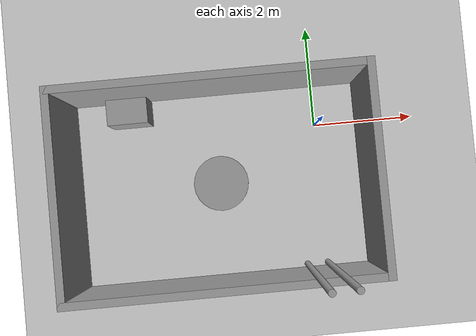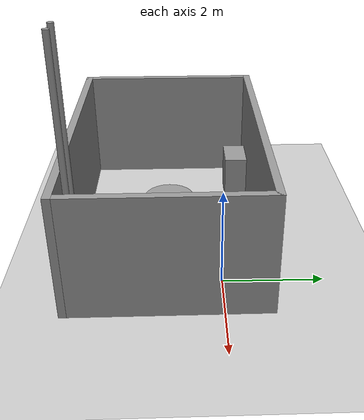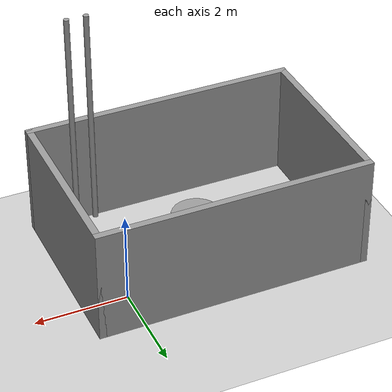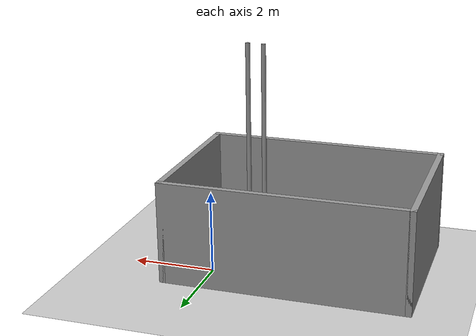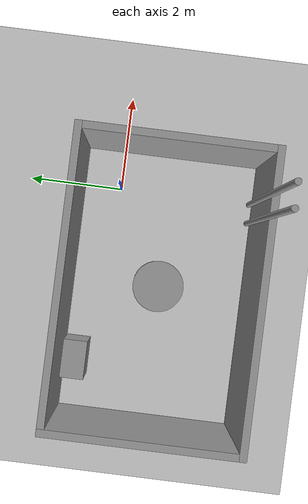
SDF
<sdf version="1.7">
 <world name="default">
  <light name="sun" type="directional">
   <pose>0 0 10 0 -0 0</pose>
   <diffuse>0.8 0.8 0.8 1</diffuse>
   <specular>0.2 0.2 0.2 1</specular>
   <attenuation>
    <range>1000</range>
    <constant>0.9</constant>
    <linear>0.01</linear>
    <quadratic>0.001</quadratic>
   </attenuation>
   <direction>-0.5 0.1 -0.9</direction>
   <spot><inner_angle>0</inner_angle><outer_angle>0</outer_angle><falloff>0</falloff></spot>
  </light>
  <model name="ground_plane">
   <static>1</static>
   <link name="link">
    <collision name="collision">
     <geometry><plane><normal>0 0 1</normal><size>100 100</size></plane></geometry>
     <surface>
      <contact><collide_bitmask>65535</collide_bitmask></contact>
      <friction><ode><mu>100</mu><mu2>50</mu2></ode></friction>
     </surface>
    </collision>
    <visual name="visual">
     <cast_shadows>0</cast_shadows>
     <geometry><plane><normal>0 0 1</normal><size>100 100</size></plane></geometry>
     <material>
      <script><uri>file://media/materials/scripts/gazebo.material</uri><name>Gazebo/Grey</name></script>
     </material>
    </visual>
   </link>
  </model>
  <gravity>0 0 -9.8</gravity>
  <magnetic_field>6e-06 2.3e-05 -4.2e-05</magnetic_field>
  <atmosphere type="adiabatic"/>
  <physics type="ode">
   <max_step_size>0.001</max_step_size>
   <real_time_factor>1</real_time_factor>
   <real_time_update_rate>1000</real_time_update_rate>
  </physics>
  <scene><ambient>0.4 0.4 0.4 1</ambient><background>0.7 0.7 0.7 1</background><shadows>1</shadows></scene>
  <spherical_coordinates>
   <surface_model>EARTH_WGS84</surface_model>
   <latitude_deg>0</latitude_deg>
   <longitude_deg>0</longitude_deg>
   <elevation>0</elevation>
   <heading_deg>0</heading_deg>
  </spherical_coordinates>
  <model name="pool">
   <pose>0.06918 -1.04342 0 0 -0 0</pose>
   <link name="Wall_10">
    <collision name="Wall_10_Collision">
     <geometry><box><size>6 0.15 2.5</size></box></geometry>
     <pose>0 0 1.25 0 -0 0</pose>
    </collision>
    <visual name="Wall_10_Visual">
     <pose>0 0 1.25 0 -0 0</pose>
     <geometry><box><size>6 0.15 2.5</size></box></geometry>
     <material>
      <script><uri>file://media/materials/scripts/gazebo.material</uri><name>Gazebo/Grey</name></script>
      <ambient>1 1 1 1</ambient>
     </material>
     <meta><layer>0</layer></meta>
    </visual>
    <pose>-2.08753 -1.925 0 0 -0 3.14159</pose>
   </link>
   <link name="Wall_11">
    <collision name="Wall_11_Collision">
     <geometry><box><size>4 0.15 2.5</size></box></geometry>
     <pose>0 0 1.25 0 -0 0</pose>
    </collision>
    <visual name="Wall_11_Visual">
     <pose>0 0 1.25 0 -0 0</pose>
     <geometry><box><size>4 0.15 2.5</size></box></geometry>
     <material>
      <script><uri>file://media/materials/scripts/gazebo.material</uri><name>Gazebo/Grey</name></script>
      <ambient>1 1 1 1</ambient>
     </material>
     <meta><layer>0</layer></meta>
    </visual>
    <pose>-5.01253 -0 0 0 -0 1.5708</pose>
   </link>
   <link name="Wall_8">
    <collision name="Wall_8_Collision">
     <geometry><box><size>6 0.15 2.5</size></box></geometry>
     <pose>0 0 1.25 0 -0 0</pose>
    </collision>
    <visual name="Wall_8_Visual">
     <pose>0 0 1.25 0 -0 0</pose>
     <geometry><box><size>6 0.15 2.5</size></box></geometry>
     <material>
      <script><uri>file://media/materials/scripts/gazebo.material</uri><name>Gazebo/Grey</name></script>
      <ambient>1 1 1 1</ambient>
     </material>
     <meta><layer>0</layer></meta>
    </visual>
    <pose>-2.08753 1.925 0 0 -0 0</pose>
   </link>
   <link name="Wall_9">
    <collision name="Wall_9_Collision">
     <geometry><box><size>4 0.15 2.5</size></box></geometry>
     <pose>0 0 1.25 0 -0 0</pose>
    </collision>
    <visual name="Wall_9_Visual">
     <pose>0 0 1.25 0 -0 0</pose>
     <geometry><box><size>4 0.15 2.5</size></box></geometry>
     <material>
      <script><uri>file://media/materials/scripts/gazebo.material</uri><name>Gazebo/Grey</name></script>
      <ambient>1 1 1 1</ambient>
     </material>
     <meta><layer>0</layer></meta>
    </visual>
    <pose>0.837469 -0 0 0 -0 -1.5708</pose>
   </link>
   <static>1</static>
  </model>
  <model name="unit_cylinder">
   <pose>-2.00181 -1.03504 0.401222 6e-06 6e-06 -0</pose>
   <link name="link">
    <inertial>
     <mass>1</mass>
     <inertia><ixx>0.145833</ixx><ixy>0</ixy><ixz>0</ixz><iyy>0.145833</iyy><iyz>0</iyz><izz>0.125</izz></inertia>
    </inertial>
    <collision name="collision">
     <geometry><cylinder><radius>0.537735</radius><length>0.802458</length></cylinder></geometry>
    </collision>
    <visual name="visual">
     <geometry><cylinder><radius>0.537735</radius><length>0.802458</length></cylinder></geometry>
     <material>
      <script><name>Gazebo/Grey</name><uri>file://media/materials/scripts/gazebo.material</uri></script>
     </material>
    </visual>
   </link>
  </model>
  <model name="unit_box">
   <link name="link">
    <inertial>
     <mass>1</mass>
     <inertia>
      <ixx>0.166667</ixx>
      <ixy>0</ixy>
      <ixz>0</ixz>
      <iyy>0.166667</iyy>
      <iyz>0</iyz>
      <izz>0.166667</izz>
     </inertia>
    </inertial>
    <pose>-0.240148 0.069354 1e-06 0 -0 0</pose>
    <visual name="visual">
     <geometry><box><size>0.8 0.5 1</size></box></geometry>
     <material>
      <script><name>Gazebo/Grey</name><uri>file://media/materials/scripts/gazebo.material</uri></script>
      <shader type="pixel"><normal_map>__default__</normal_map></shader>
      <ambient>0.3 0.3 0.3 1</ambient>
      <diffuse>0.7 0.7 0.7 1</diffuse>
      <specular>0.01 0.01 0.01 1</specular>
      <emissive>0 0 0 1</emissive>
     </material>
    </visual>
    <collision name="collision">
     <geometry><box><size>0.8 0.5 1</size></box></geometry>
     <surface>
      <friction>
       <ode><mu>1</mu><mu2>1</mu2><fdir1>0 0 0</fdir1><slip1>0</slip1><slip2>0</slip2></ode>
       <torsional>
        <coefficient>1</coefficient>
        <patch_radius>0</patch_radius>
        <surface_radius>0</surface_radius>
        <use_patch_radius>1</use_patch_radius>
        <ode><slip>0</slip></ode>
       </torsional>
      </friction>
      <bounce><restitution_coefficient>0</restitution_coefficient><threshold>1e+06</threshold></bounce>
      <contact>
       <collide_without_contact>0</collide_without_contact>
       <collide_without_contact_bitmask>1</collide_without_contact_bitmask>
       <collide_bitmask>1</collide_bitmask>
       <ode>
        <soft_cfm>0</soft_cfm>
        <soft_erp>0.2</soft_erp>
        <kp>1e+13</kp>
        <kd>1</kd>
        <max_vel>0.01</max_vel>
        <min_depth>0</min_depth>
       </ode>
       <bullet>
        <split_impulse>1</split_impulse>
        <split_impulse_penetration_threshold>-0.01</split_impulse_penetration_threshold>
        <soft_cfm>0</soft_cfm>
        <soft_erp>0.2</soft_erp>
        <kp>1e+13</kp>
        <kd>1</kd>
       </bullet>
      </contact>
     </surface>
    </collision>
   </link>
   <static>0</static>
   <pose>-3.47729 0.464029 0.499992 3e-06 9e-06 0.000358</pose>
  </model>
  <model name="Untitled_clone">
   <link name="link_0">
    <inertial>
     <mass>1</mass>
     <inertia><ixx>0.145833</ixx><ixy>0</ixy><ixz>0</ixz><iyy>0.145833</iyy><iyz>0</iyz><izz>0.125</izz></inertia>
    </inertial>
    <pose>-0 0 -0.850864 0 -0 0</pose>
    <visual name="visual">
     <geometry><cylinder><radius>0.06</radius><length>5</length></cylinder></geometry>
     <material>
      <lighting>1</lighting>
      <script><uri>file://media/materials/scripts/gazebo.material</uri><name>Gazebo/Grey</name></script>
      <shader type="pixel"><normal_map>__default__</normal_map></shader>
      <ambient>0.3 0.3 0.3 1</ambient>
      <diffuse>0.7 0.7 0.7 1</diffuse>
      <specular>0.01 0.01 0.01 1</specular>
      <emissive>0 0 0 1</emissive>
     </material>
    </visual>
    <collision name="collision">
     <geometry><cylinder><radius>0.06</radius><length>5</length></cylinder></geometry>
     <surface>
      <friction>
       <ode><mu>1</mu><mu2>1</mu2><fdir1>0 0 0</fdir1><slip1>0</slip1><slip2>0</slip2></ode>
       <torsional>
        <coefficient>1</coefficient>
        <patch_radius>0</patch_radius>
        <surface_radius>0</surface_radius>
        <use_patch_radius>1</use_patch_radius>
        <ode><slip>0</slip></ode>
       </torsional>
      </friction>
      <bounce><restitution_coefficient>0</restitution_coefficient><threshold>1e+06</threshold></bounce>
      <contact>
       <collide_without_contact>0</collide_without_contact>
       <collide_without_contact_bitmask>1</collide_without_contact_bitmask>
       <collide_bitmask>1</collide_bitmask>
       <ode>
        <soft_cfm>0</soft_cfm>
        <soft_erp>0.2</soft_erp>
        <kp>1e+13</kp>
        <kd>1</kd>
        <max_vel>0.01</max_vel>
        <min_depth>0</min_depth>
       </ode>
       <bullet>
        <split_impulse>1</split_impulse>
        <split_impulse_penetration_threshold>-0.01</split_impulse_penetration_threshold>
        <soft_cfm>0</soft_cfm>
        <soft_erp>0.2</soft_erp>
        <kp>1e+13</kp>
        <kd>1</kd>
       </bullet>
      </contact>
     </surface>
    </collision>
   </link>
   <static>0</static>
   <pose>-0.403289 -2.83341 3.35086 1e-06 -6e-06 0.000189</pose>
  </model>
  <model name="Untitled_clone_clone">
   <link name="link_0">
    <inertial>
     <mass>1</mass>
     <inertia><ixx>0.145833</ixx><ixy>0</ixy><ixz>0</ixz><iyy>0.145833</iyy><iyz>0</iyz><izz>0.125</izz></inertia>
    </inertial>
    <pose>-0 0 -0.850864 0 -0 0</pose>
    <visual name="visual">
     <geometry><cylinder><radius>0.06</radius><length>5</length></cylinder></geometry>
     <material>
      <lighting>1</lighting>
      <script><uri>file://media/materials/scripts/gazebo.material</uri><name>Gazebo/Grey</name></script>
      <shader type="pixel"><normal_map>__default__</normal_map></shader>
      <ambient>0.3 0.3 0.3 1</ambient>
      <diffuse>0.7 0.7 0.7 1</diffuse>
      <specular>0.01 0.01 0.01 1</specular>
      <emissive>0 0 0 1</emissive>
     </material>
    </visual>
    <collision name="collision">
     <geometry><cylinder><radius>0.06</radius><length>5</length></cylinder></geometry>
     <surface>
      <friction>
       <ode><mu>1</mu><mu2>1</mu2><fdir1>0 0 0</fdir1><slip1>0</slip1><slip2>0</slip2></ode>
       <torsional>
        <coefficient>1</coefficient>
        <patch_radius>0</patch_radius>
        <surface_radius>0</surface_radius>
        <use_patch_radius>1</use_patch_radius>
        <ode><slip>0</slip></ode>
       </torsional>
      </friction>
      <bounce><restitution_coefficient>0</restitution_coefficient><threshold>1e+06</threshold></bounce>
      <contact>
       <collide_without_contact>0</collide_without_contact>
       <collide_without_contact_bitmask>1</collide_without_contact_bitmask>
       <collide_bitmask>1</collide_bitmask>
       <ode>
        <soft_cfm>0</soft_cfm>
        <soft_erp>0.2</soft_erp>
        <kp>1e+13</kp>
        <kd>1</kd>
        <max_vel>0.01</max_vel>
        <min_depth>0</min_depth>
       </ode>
       <bullet>
        <split_impulse>1</split_impulse>
        <split_impulse_penetration_threshold>-0.01</split_impulse_penetration_threshold>
        <soft_cfm>0</soft_cfm>
        <soft_erp>0.2</soft_erp>
        <kp>1e+13</kp>
        <kd>1</kd>
       </bullet>
      </contact>
     </surface>
    </collision>
   </link>
   <static>0</static>
   <pose>0.014408 -2.83339 3.35086 -1e-06 5e-06 0.001496</pose>
  </model>
 </world>
</sdf>
